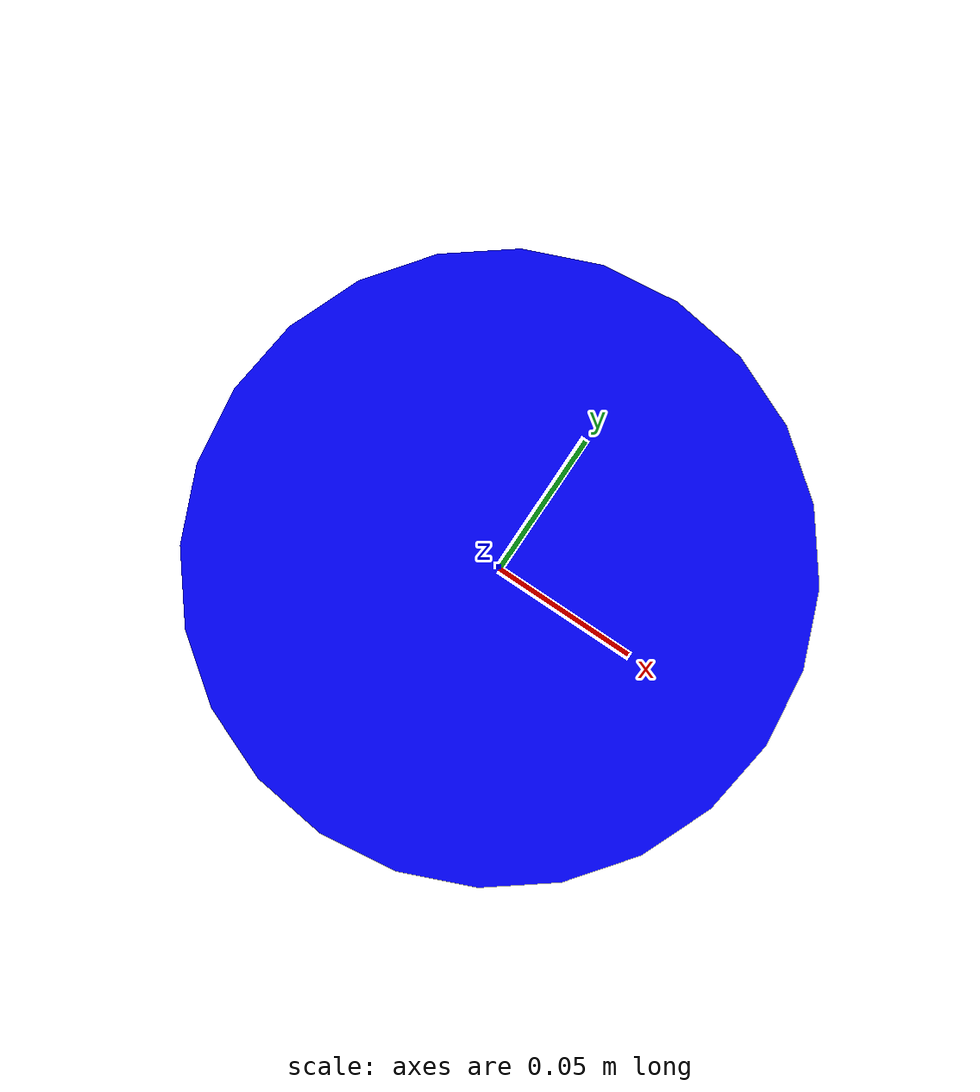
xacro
<?xml version="1.0"?>
<robot xmlns:xacro="http://www.ros.org/wiki/xacro" name="jga25_robot">

  <!-- 1. On inclut votre configuration ros2_control -->
  <xacro:include filename="ros2_control.xacro" />

  <!-- 2. Définition des liens (base) -->
  <link name="base_link">
    <visual>
      <geometry>
        <cylinder radius="0.1" length="0.05"/>
      </geometry>
      <material name="blue">
        <color rgba="0 0 1 1"/>
      </material>
    </visual>
  </link>

  <!-- 3. Définition du joint (la roue) -->
  <joint name="roue_joint" type="continuous">
    <parent link="base_link"/>
    <child link="roue_link"/>
    <origin xyz="0 0 0" rpy="0 0 0"/>
    <axis xyz="0 1 0"/> <!-- Axe de rotation de la roue -->
  </joint>

  <!-- 4. Définition du lien de la roue -->
  <link name="roue_link">
    <visual>
      <geometry>
        <cylinder radius="0.05" length="0.02"/>
      </geometry>
      <material name="black">
        <color rgba="0 0 0 1"/>
      </material>
    </visual>
  </link>

</robot>
